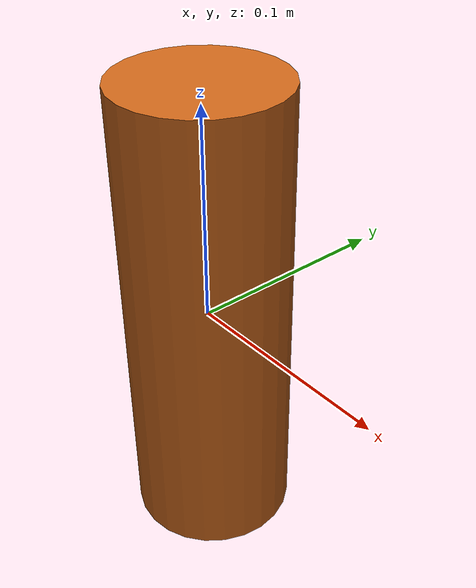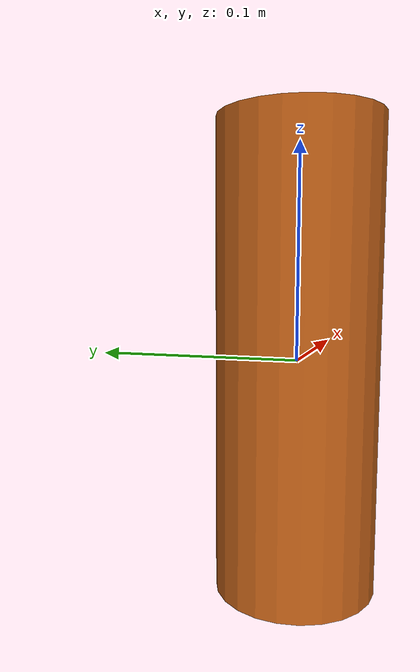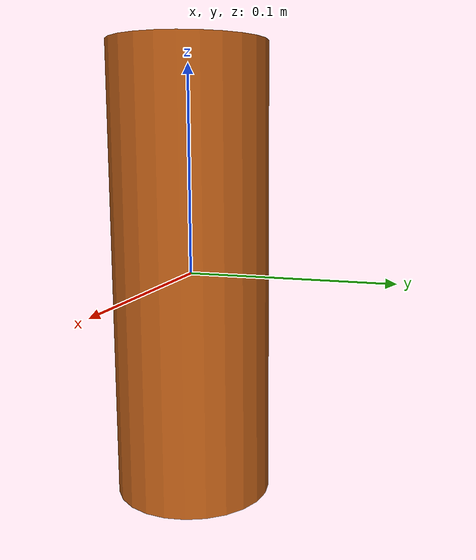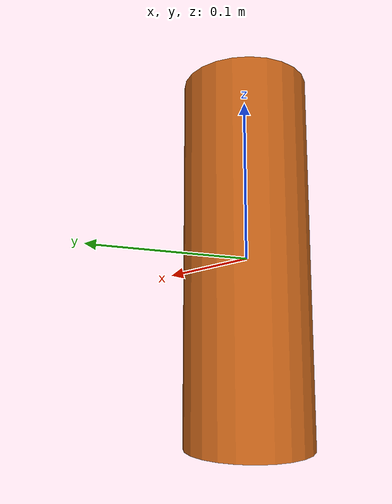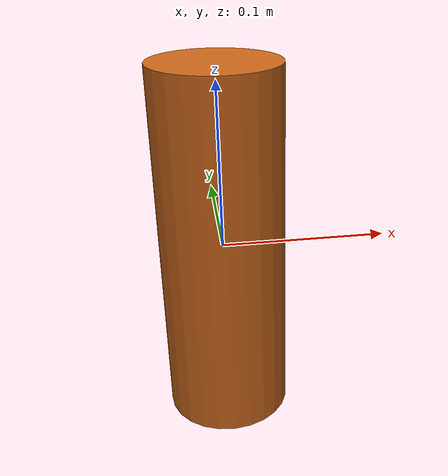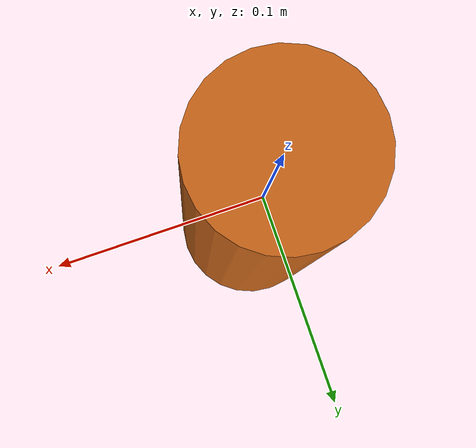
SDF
<?xml version="1.0" ?>
<sdf version="1.5">
  <model name="pringles_can">
    <link name="link">
      <inertial>
        <mass>0.200</mass>
        <!-- cylinder: r=0.038m, h=0.220m -->
        <inertia>
          <ixx>0.000986</ixx><ixy>0</ixy><ixz>0</ixz>
          <iyy>0.000986</iyy><iyz>0</iyz><izz>0.000144</izz>
        </inertia>
      </inertial>
      <collision name="collision">
        <geometry><cylinder><radius>0.038</radius><length>0.220</length></cylinder></geometry>
              <surface>
          <friction>
            <ode>
              <mu>0.5</mu>
              <mu2>0.5</mu2>
            </ode>
            <torsional>
              <coefficient>0.5</coefficient>
              <surface_radius>0.01</surface_radius>
            </torsional>
          </friction>
          <contact>
            <ode>
              <kp>1e6</kp>
              <kd>50</kd>
              <min_depth>0.001</min_depth>
              <max_vel>0.01</max_vel>
            </ode>
          </contact>
        </surface>
      </collision>
      <visual name="visual">
        <geometry><cylinder><radius>0.038</radius><length>0.220</length></cylinder></geometry>
        <material>
          <ambient>0.8 0.4 0.1 1</ambient><diffuse>0.8 0.4 0.1 1</diffuse>
        </material>
      </visual>
    </link>
  </model>
</sdf>
